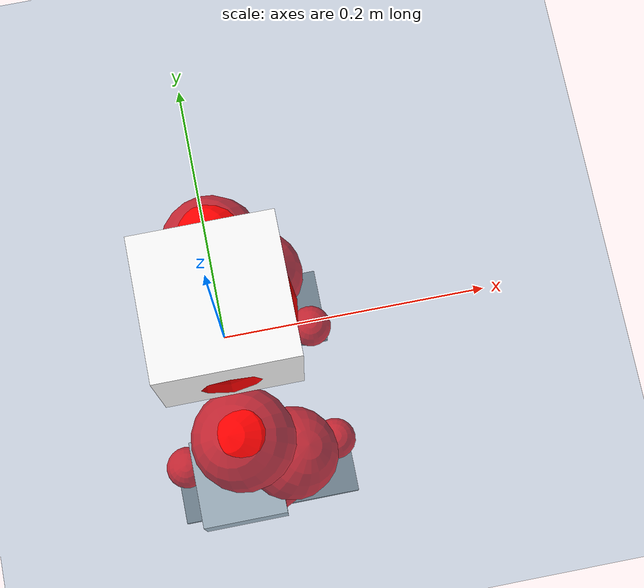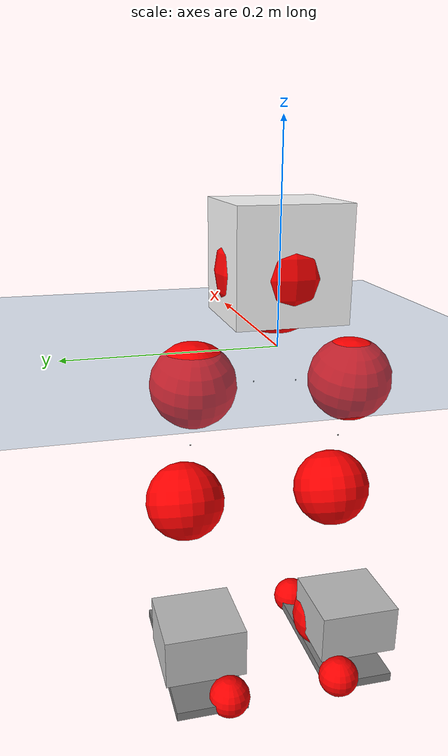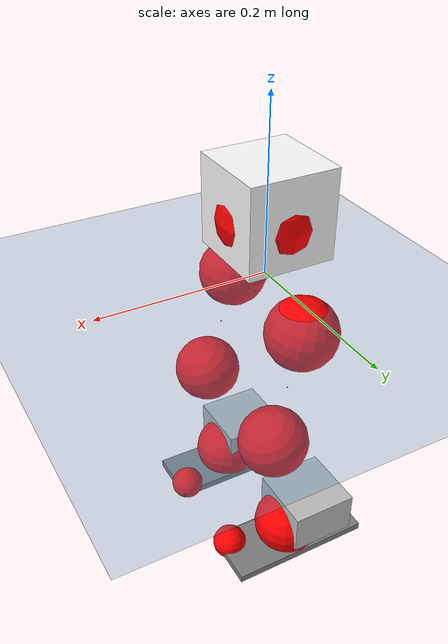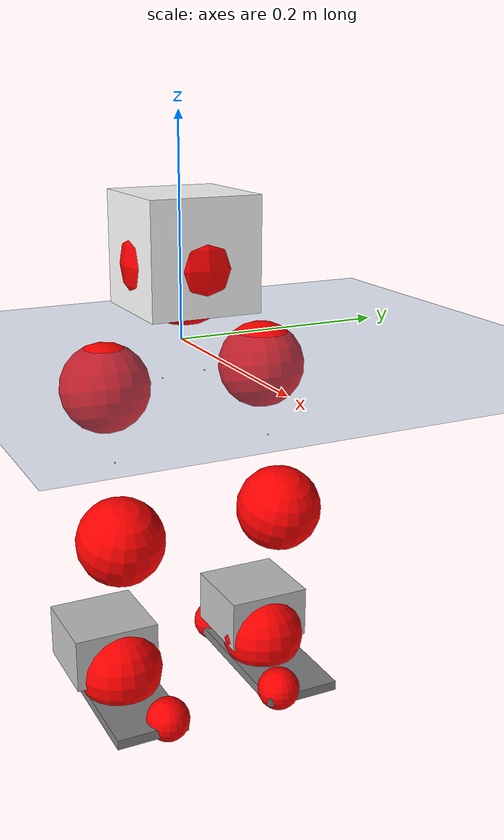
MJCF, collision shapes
<mujoco model="pi_12dof_release_v1">
  <compiler angle="radian" assetdir="assets" balanceinertia="true" inertiafromgeom="false"/>

  <option timestep="0.005" density="1.2" viscosity="2e-05"/>

  <size nkey="1"/>

  <visual>
    <quality shadowsize="8192"/>
    <map shadowclip="0.5"/>
  </visual>

  <default>
    <default class="/">
      <joint armature="0.01" damping="0.01" frictionloss="0.01"/>
      <geom contype="0" conaffinity="0" group="1" solref="-1000 -80"/>
      <site size="0.01 0.005 0.005" group="5"/>
      <general forcelimited="true" biastype="affine" gainprm="20" biasprm="0 -20 -0.5"/>
      <default class="foot">
        <geom size="0.0845 0.036 0.005" type="box" condim="6" group="4" priority="1" friction="0.9 0.2 0.2" solimp="0.015 1 0.005"/>
      </default>
      <default class="reward_collision_sphere">
        <geom group="5" rgba="1 0 0 1"/>
      </default>
    </default>
  </default>

  <asset>
    <texture type="skybox" colorspace="auto" name="//unnamed_texture_0" builtin="gradient" rgb1="0.95 0.95 0.95" rgb2="0.95 0.95 0.95" width="100" height="600"/>
    <texture type="2d" colorspace="auto" name="texplane" builtin="checker" rgb1="0.345 0.575 0.748" rgb2="0.345 0.575 0.748" markrgb="1 1 1" width="512" height="512"/>
    <material name="MatPlane" class="/" texture="texplane" texuniform="true" texrepeat="2 2" specular="0.9"/>
    <mesh name="baselink_1" class="/" file="baselink_1.STL"/>
    <mesh name="r_hip_pitch_link" class="/" file="r_hip_pitch_link.STL"/>
    <mesh name="r_hip_roll_link" class="/" file="r_hip_roll_link.STL"/>
    <mesh name="r_thigh_link" class="/" file="r_thigh_link.STL"/>
    <mesh name="r_calf_link" class="/" file="r_calf_link.STL"/>
    <mesh name="r_ankle_pitch_link" class="/" file="r_ankle_pitch_link.STL"/>
    <mesh name="r_ankle_roll_link" class="/" file="r_ankle_roll_link.STL"/>
    <mesh name="l_hip_pitch_link" class="/" file="l_hip_pitch_link.STL"/>
    <mesh name="l_hip_roll_link" class="/" file="l_hip_roll_link.STL"/>
    <mesh name="l_thigh_link" class="/" file="l_thigh_link.STL"/>
    <mesh name="l_calf_link" class="/" file="l_calf_link.STL"/>
    <mesh name="l_ankle_pitch_link" class="/" file="l_ankle_pitch_link.STL"/>
    <mesh name="l_ankle_roll_link" class="/" file="l_ankle_roll_link.STL"/>
  </asset>

  <worldbody>
    <geom name="floor" class="/" size="100 100 0.125" type="plane" group="0" material="MatPlane"/>
    <light name="toplight_shadow" class="/" pos="0 0 5" dir="0.0990148 0.0990148 -0.990148" type="directional" ambient="0.04 0.04 0.04" diffuse="0.55 0.55 0.55" specular="0.12 0.12 0.12"/>
    <light name="toplight_fill" class="/" pos="0 0 5" dir="0.0990148 0.0990148 -0.990148" type="directional" castshadow="false" ambient="0.04 0.04 0.04" diffuse="0.3 0.3 0.3" specular="0.08 0.08 0.08"/>
    <body name="trunk" pos="0.00086236 0.00257062 0.000844723" quat="1 -0.000400864 2.05921e-05 0.000603613">
      <inertial pos="0.00315479 -0.0018645 0.0400743" quat="0.697757 0.0182697 0.0197571 0.715829" mass="2.36209" diaginertia="0.0162238 0.00835978 0.00400514"/>
      <joint name="//unnamed_joint_0" type="free"/>
      <geom name="//unnamed_geom_1" class="/" type="mesh" density="0" rgba="1 1 1 1" mesh="baselink_1"/>
      <geom name="//unnamed_geom_2" class="/" size="0.0511656 0.0511656 0.0511656" pos="0 0 0.0795019" type="box" rgba="1 1 1 1"/>
      <geom name="//unnamed_geom_3" class="reward_collision_sphere" size="0.0562822" pos="0 0 0.0695642"/>
      <site name="imu" class="/" pos="0.0089232 -0.000157708 0.000766975" size="0.0102331"/>
      <camera name="track" class="/" pos="0 -1.952 0" quat="0.707107 0.707107 0 0" mode="trackcom"/>
      <camera name="ego_camera" class="/" pos="0.0825126 0 0.178879" quat="-0.5 -0.5 0.5 0.5"/>
      <body name="r_hip_pitch_link" pos="9.51688e-05 -0.022 -0.0352483" quat="0.992127 -9.39483e-05 -0.125234 9.32529e-05">
        <inertial pos="0.00080551 -0.0576055 0.000123596" quat="-0.018979 0.706498 -0.0272291 0.706936" mass="0.395535" diaginertia="0.000174767 8.54529e-05 8.16839e-05"/>
        <joint name="r_hip_pitch_joint" class="/" pos="0 0 0" axis="-0.00369407 -0.999989 -0.00285023" range="-1.74503 1.29855" armature="0.0102604" damping="0.011068" frictionloss="0.0100849"/>
        <geom name="//unnamed_geom_4" class="/" type="mesh" density="0" rgba="0.75294 0.75294 0.75294 1" mesh="r_hip_pitch_link"/>
        <geom name="//unnamed_geom_5" class="/" size="0.000511656 0.000511656 0.000511656" type="box" rgba="0.75294 0.75294 0.75294 1"/>
        <body name="r_hip_roll_link" pos="-0.00243261 -0.0547291 -0.00198801" quat="0.999999 0.00134554 0.000537368 -8.44522e-05">
          <inertial pos="-0.00149558 -0.000346063 -0.0598462" quat="0.708023 -0.0843305 -0.0944957 0.694739" mass="0.39927" diaginertia="0.000517343 0.000238636 0.000122202"/>
          <joint name="r_hip_roll_joint" class="/" pos="0 0 0" axis="-0.999965 -0.00604457 -0.00573509" stiffness="0.00160071" range="-0.119841 0.518693" armature="0.0115238" damping="0" frictionloss="0.00910968"/>
          <geom name="//unnamed_geom_6" class="/" type="mesh" density="0" rgba="0.75294 0.75294 0.75294 1" mesh="r_hip_roll_link"/>
          <geom name="//unnamed_geom_7" class="/" size="0.000511656 0.000511656 0.000511656" type="box" rgba="0.75294 0.75294 0.75294 1"/>
          <geom name="//unnamed_geom_8" class="reward_collision_sphere" size="0.0409325"/>
          <body name="r_thigh_link" pos="9.40385e-05 0.000795513 -0.0678861" quat="1 6.3915e-05 -0.00097874 -4.77705e-05">
            <inertial pos="0.00307711 -0.00104845 -0.0477397" quat="0.73749 0.675356 -0.000134773 -0.00138298" mass="0.128969" diaginertia="0.000202934 8.69619e-05 5.70148e-05"/>
            <joint name="r_thigh_joint" class="/" pos="0 0 0" axis="-0.0137181 -0.00683429 -0.999883" stiffness="0.00977233" range="-0.257506 0.594703" armature="0.0104177" damping="0.00124071" frictionloss="0.00881669"/>
            <geom name="//unnamed_geom_9" class="/" type="mesh" density="0" rgba="0.75294 0.75294 0.75294 1" mesh="r_thigh_link"/>
            <geom name="//unnamed_geom_10" class="/" size="0.000511656 0.000511656 0.000511656" type="box" rgba="0.75294 0.75294 0.75294 1"/>
            <body name="r_calf_link" pos="0.000646293 -0.00373373 -0.0710689" quat="0.947618 -0.000102945 0.319406 -0.000510505">
              <inertial pos="-0.000502324 0.00139569 -0.0696766" quat="0.999935 -0.00666508 -0.00752739 -0.00546686" mass="0.873848" diaginertia="0.00574555 0.00300405 0.000169814"/>
              <joint name="r_calf_joint" class="/" pos="0 0 0" axis="-0.00237286 -0.999987 0.00458144" range="-1.63704 0.652075" armature="0.0115594" damping="0.00323292" frictionloss="0.0100148"/>
              <geom name="//unnamed_geom_11" class="/" type="mesh" density="0" rgba="0.75294 0.75294 0.75294 1" mesh="r_calf_link"/>
              <geom name="//unnamed_geom_12" class="/" size="0.000511656 0.000511656 0.000511656" type="box" rgba="0.75294 0.75294 0.75294 1"/>
              <geom name="//unnamed_geom_13" class="reward_collision_sphere" size="0.0409325"/>
              <body name="r_ankle_pitch_link" pos="-0.000231654 -0.00189643 -0.136757" quat="0.98005 8.19733e-05 -0.198753 4.0005e-05">
                <inertial pos="0.00246345 0.00221242 0.00121144" quat="0.00118445 0.707325 -0.0011912 0.706886" mass="0.194009" diaginertia="0.000500647 0.000202924 0.000119483"/>
                <joint name="r_ankle_pitch_joint" class="/" pos="0 0 0" axis="0.0130804 -0.999903 0.00476507" stiffness="0.00788645" range="-1.24322 0.498572" armature="0.0096095" damping="0.0212726" frictionloss="0.00908073"/>
                <geom name="//unnamed_geom_14" class="/" type="mesh" density="0" rgba="0.75294 0.75294 0.75294 1" mesh="r_ankle_pitch_link"/>
                <geom name="//unnamed_geom_15" class="/" size="0.0399092 0.0409325 0.0255828" type="box" rgba="0.75294 0.75294 0.75294 1"/>
                <body name="r_ankle_roll_link" pos="0.0826953 0.00592594 0.00104926" quat="1 -0.000164797 8.49224e-05 0.000110738">
                  <inertial pos="-0.0273951 -0.00231387 -0.0129896" quat="0.558165 0.429126 0.435553 0.560889" mass="0.544321" diaginertia="0.00188164 0.000924268 0.000272206"/>
                  <joint name="r_ankle_roll_joint" class="/" pos="0 0 0" axis="-0.999996 0.00273159 -0.000551679" range="-0.147237 0.147496" armature="0.0110567" damping="0.00561692" frictionloss="0.0100692"/>
                  <geom name="//unnamed_geom_16" class="/" type="mesh" density="0" rgba="0.75294 0.75294 0.75294 1" mesh="r_ankle_roll_link"/>
                  <geom name="//unnamed_geom_17" class="/" type="mesh" rgba="0.75294 0.75294 0.75294 1" mesh="r_ankle_roll_link"/>
                  <geom name="right_foot" class="foot" size="0.0856428 0.0345504 0.00468844" pos="-0.0561085 0 -0.0437261"/>
                  <geom name="//unnamed_geom_19" class="reward_collision_sphere" size="0.0409325" pos="-0.0550084 0 -0.0198755"/>
                  <geom name="//unnamed_geom_20" class="reward_collision_sphere" size="0.0204663" pos="0.0165025 0.01952 -0.039751"/>
                  <geom name="//unnamed_geom_21" class="reward_collision_sphere" size="0.0204663" pos="-0.13202 0.01952 -0.039751"/>
                  <site name="right_foot" class="foot" pos="-0.0561085 0 -0.0437261" size="0.0102331"/>
                </body>
              </body>
            </body>
          </body>
        </body>
      </body>
      <body name="l_hip_pitch_link" pos="-0.0018861 0.0205705 -0.033025" quat="0.992188 -4.34749e-05 -0.124749 -0.000499641">
        <inertial pos="0.00108189 0.0539764 0.000243193" quat="-0.0417295 0.705573 0.0341905 0.706581" mass="0.401598" diaginertia="0.000201713 9.3115e-05 9.57538e-05"/>
        <joint name="l_hip_pitch_joint" class="/" pos="0 0 0" axis="-0.00802315 0.999967 0.00101554" stiffness="0.00355116" range="-1.25653 1.75745" armature="0.0103503" damping="0.0198971" frictionloss="0.0116617"/>
        <geom name="//unnamed_geom_22" class="/" type="mesh" density="0" rgba="0.75294 0.75294 0.75294 1" mesh="l_hip_pitch_link"/>
        <geom name="//unnamed_geom_23" class="/" size="0.000511656 0.000511656 0.000511656" type="box" rgba="0.75294 0.75294 0.75294 1"/>
        <body name="l_hip_roll_link" pos="0.00310111 0.0574193 -0.000644541" quat="0.999999 -0.001015 0.000344543 -0.000848925">
          <inertial pos="0.000780159 -0.000119389 -0.0614396" quat="0.692518 -0.0747682 -0.0774469 0.713323" mass="0.433715" diaginertia="0.000535145 0.000249665 0.000129262"/>
          <joint name="l_hip_roll_joint" class="/" pos="0 0 0" axis="-0.999924 0.0114542 0.00455815" range="-0.50037 0.169498" armature="0.0110672" damping="0" frictionloss="0.00883386"/>
          <geom name="//unnamed_geom_24" class="/" type="mesh" density="0" rgba="0.75294 0.75294 0.75294 1" mesh="l_hip_roll_link"/>
          <geom name="//unnamed_geom_25" class="/" size="0.000511656 0.000511656 0.000511656" type="box" rgba="0.75294 0.75294 0.75294 1"/>
          <geom name="//unnamed_geom_26" class="reward_collision_sphere" size="0.0409325"/>
          <body name="l_thigh_link" pos="-0.00216795 0.000823667 -0.0679682" quat="1 0.000306938 0.000194018 -5.0106e-05">
            <inertial pos="0.000650322 -0.0018249 -0.0485347" quat="0.666247 0.745704 -0.00303746 -0.00565292" mass="0.120005" diaginertia="0.000203763 8.10382e-05 5.5594e-05"/>
            <joint name="l_thigh_joint" class="/" pos="0 0 0" axis="0.00631012 0.00754695 -0.999952" range="-0.603673 0.304957" armature="0.0103208" damping="0.000583613" frictionloss="0.00994343"/>
            <geom name="//unnamed_geom_27" class="/" type="mesh" density="0" rgba="0.75294 0.75294 0.75294 1" mesh="l_thigh_link"/>
            <geom name="//unnamed_geom_28" class="/" size="0.000511656 0.000511656 0.000511656" type="box" rgba="0.75294 0.75294 0.75294 1"/>
            <body name="l_calf_link" pos="-0.000282355 0.00316677 -0.0714222" quat="0.947619 0.000393404 0.319402 0.00107029">
              <inertial pos="0.00271055 0.00600044 -0.0698457" quat="0.999985 0.00311959 -0.000154829 0.00459248" mass="0.861237" diaginertia="0.00581851 0.00316907 0.000173207"/>
              <joint name="l_calf_joint" class="/" pos="0 0 0" axis="-0.00350407 0.999993 0.00142934" range="-0.603012 1.70371" armature="0.0103265" damping="0.00371681" frictionloss="0.00950307"/>
              <geom name="//unnamed_geom_29" class="/" type="mesh" density="0" rgba="0.75294 0.75294 0.75294 1" mesh="l_calf_link"/>
              <geom name="//unnamed_geom_30" class="/" size="0.000511656 0.000511656 0.000511656" type="box" rgba="0.75294 0.75294 0.75294 1"/>
              <geom name="//unnamed_geom_31" class="reward_collision_sphere" size="0.0409325"/>
              <body name="l_ankle_pitch_link" pos="0.00102992 -0.000202867 -0.138797" quat="0.980202 -0.000884581 -0.197998 0.000613989">
                <inertial pos="0.00752826 4.16118e-06 0.00167264" quat="-0.00294532 0.707275 0.00656436 0.706902" mass="0.184222" diaginertia="0.000499801 0.000199198 0.000114187"/>
                <joint name="l_ankle_pitch_joint" class="/" pos="0 0 0" axis="-0.00293214 0.999926 0.0118173" stiffness="0.00820059" range="-0.457425 1.35399" armature="0.0091837" damping="0.00236265" frictionloss="0.0106553"/>
                <geom name="//unnamed_geom_32" class="/" type="mesh" density="0" rgba="0.75294 0.75294 0.75294 1" mesh="l_ankle_pitch_link"/>
                <geom name="//unnamed_geom_33" class="/" size="0.0399092 0.0409325 0.0255828" type="box" rgba="0.75294 0.75294 0.75294 1"/>
                <body name="l_ankle_roll_link" pos="0.0811976 -0.00113105 -0.000334383" quat="1 -7.68161e-05 0.000326303 4.63772e-05">
                  <inertial pos="-0.0273077 0.000693577 -0.0142301" quat="0.562878 0.42734 0.432861 0.559625" mass="0.569168" diaginertia="0.00178015 0.000933225 0.000278087"/>
                  <joint name="l_ankle_roll_joint" class="/" pos="0 0 0" axis="-0.999943 0.00854696 0.00641381" stiffness="0.000280268" range="-0.129099 0.101269" armature="0.0102806" damping="0.0105158" frictionloss="0.0107483"/>
                  <geom name="//unnamed_geom_34" class="/" type="mesh" density="0" rgba="0.75294 0.75294 0.75294 1" mesh="l_ankle_roll_link"/>
                  <geom name="//unnamed_geom_35" class="/" type="mesh" rgba="0.75294 0.75294 0.75294 1" mesh="l_ankle_roll_link"/>
                  <geom name="left_foot" class="foot" size="0.0869662 0.0360067 0.00455368" pos="-0.0561085 0 -0.0437261"/>
                  <geom name="//unnamed_geom_37" class="reward_collision_sphere" size="0.0409325" pos="-0.0550084 0 -0.0198755"/>
                  <geom name="//unnamed_geom_38" class="reward_collision_sphere" size="0.0204663" pos="0.0165025 -0.01952 -0.039751"/>
                  <geom name="//unnamed_geom_39" class="reward_collision_sphere" size="0.0204663" pos="-0.13202 -0.01952 -0.039751"/>
                  <site name="left_foot" class="foot" pos="-0.0561085 0 -0.0437261" size="0.0102331"/>
                </body>
              </body>
            </body>
          </body>
        </body>
      </body>
    </body>
  </worldbody>

  <contact>
    <pair class="/" geom1="floor" geom2="right_foot" name="//unnamed_contact_1"/>
    <pair class="/" geom1="floor" geom2="left_foot" name="//unnamed_contact_0"/>
  </contact>

  <actuator>
    <general name="r_hip_pitch_joint" class="/" joint="r_hip_pitch_joint" forcerange="-23.7898 23.7898" gainprm="20.2951" biasprm="0 -20.2951 -0.50312"/>
    <general name="r_hip_roll_joint" class="/" joint="r_hip_roll_joint" forcerange="-21.9811 21.9811" gainprm="20.2951" biasprm="0 -20.2951 -0.50312"/>
    <general name="r_thigh_joint" class="/" joint="r_thigh_joint" forcerange="-19.5145 19.5145" gainprm="20.2951" biasprm="0 -20.2951 -0.50312"/>
    <general name="r_calf_joint" class="/" joint="r_calf_joint" forcerange="-21.2281 21.2281" gainprm="20.2951" biasprm="0 -20.2951 -0.50312"/>
    <general name="r_ankle_pitch_joint" class="/" joint="r_ankle_pitch_joint" forcerange="-20.0843 20.0843" gainprm="20.2951" biasprm="0 -20.2951 -0.50312"/>
    <general name="r_ankle_roll_joint" class="/" joint="r_ankle_roll_joint" forcerange="-23.0763 23.0763" gainprm="20.2951" biasprm="0 -20.2951 -0.50312"/>
    <general name="l_hip_pitch_joint" class="/" joint="l_hip_pitch_joint" forcerange="-21.2986 21.2986" gainprm="20.2951" biasprm="0 -20.2951 -0.50312"/>
    <general name="l_hip_roll_joint" class="/" joint="l_hip_roll_joint" forcerange="-20.3727 20.3727" gainprm="20.2951" biasprm="0 -20.2951 -0.50312"/>
    <general name="l_thigh_joint" class="/" joint="l_thigh_joint" forcerange="-23.6679 23.6679" gainprm="20.2951" biasprm="0 -20.2951 -0.50312"/>
    <general name="l_calf_joint" class="/" joint="l_calf_joint" forcerange="-21.3266 21.3266" gainprm="20.2951" biasprm="0 -20.2951 -0.50312"/>
    <general name="l_ankle_pitch_joint" class="/" joint="l_ankle_pitch_joint" forcerange="-21.2793 21.2793" gainprm="20.2951" biasprm="0 -20.2951 -0.50312"/>
    <general name="l_ankle_roll_joint" class="/" joint="l_ankle_roll_joint" forcerange="-23.6619 23.6619" gainprm="20.2951" biasprm="0 -20.2951 -0.50312"/>
  </actuator>

  <sensor>
    <gyro site="imu" name="imu_angular_velocity"/>
    <velocimeter site="imu" name="imu_linear_velocity"/>
    <framelinvel objtype="site" objname="left_foot" name="left_foot_global_linear_velocity"/>
    <framelinvel objtype="site" objname="right_foot" name="right_foot_global_linear_velocity"/>
  </sensor>

  <keyframe>
    <key name="home" qpos="0 0 0.291 1 0 0 0 0.4 0 0 -0.8 0.4 0 -0.4 0 0 0.8 -0.4 0"/>
  </keyframe>
</mujoco>
